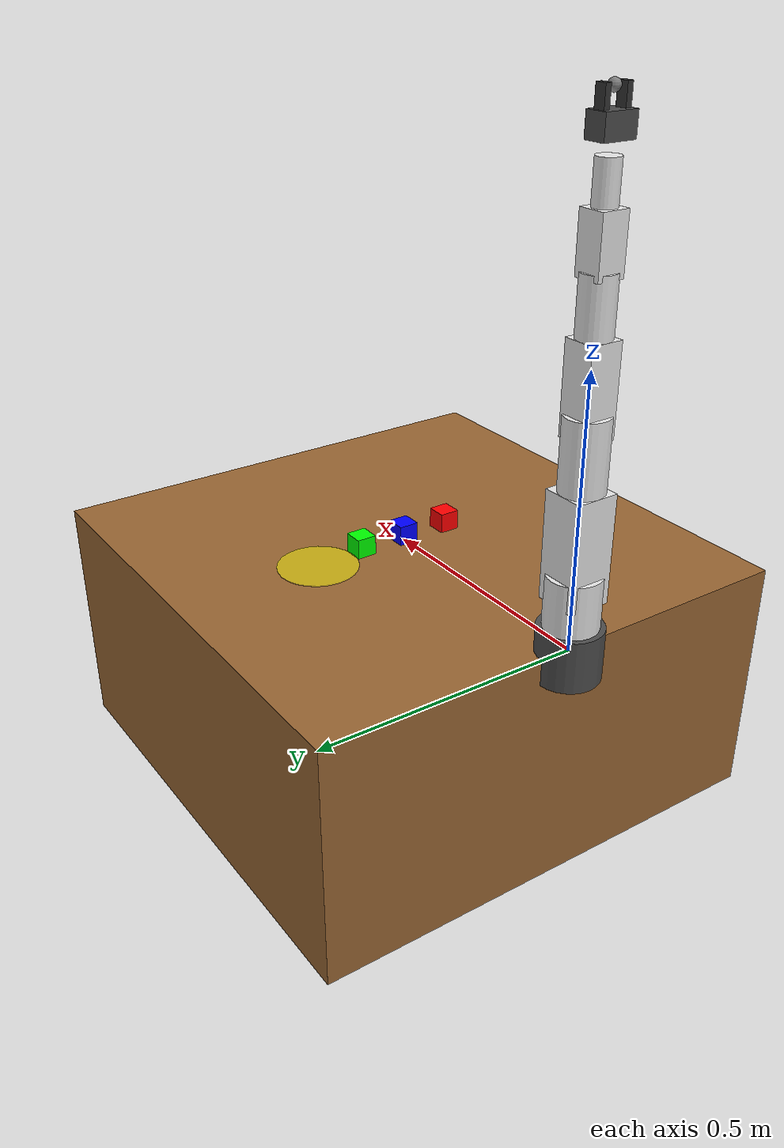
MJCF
<mujoco model="franka_pick_place">
    <compiler angle="radian" meshdir="assets"/>

    <option timestep="0.002" gravity="0 0 -9.81"/>

    <asset>
        <!-- Materials for colored blocks -->
        <material name="red" rgba="1 0 0 1"/>
        <material name="blue" rgba="0 0 1 1"/>
        <material name="green" rgba="0 1 0 1"/>
        <material name="yellow" rgba="1 1 0 0.5"/>
        <material name="wood" rgba="0.6 0.4 0.2 1"/>
        <material name="metal" rgba="0.7 0.7 0.7 1"/>
    </asset>

    <worldbody>
        <!-- Lighting -->
        <light directional="true" pos="0 0 3" dir="0 0 -1"/>
        <light directional="true" pos="0.5 0.5 2" dir="0 0 -1"/>

        <!-- Table -->
        <body name="table" pos="0.5 0 -0.25">
            <geom type="box" size="0.5 0.5 0.25" material="wood" mass="0"/>
        </body>

        <!-- Simple Franka-like Robot Arm (7-DOF + gripper) -->
        <body name="robot_base" pos="0 0 0">
            <!-- Link 0: Base -->
            <geom type="cylinder" size="0.06 0.05" rgba="0.3 0.3 0.3 1" mass="0"/>

            <!-- Joint 1: Rotation around Z -->
            <body name="link1" pos="0 0 0.05">
                <joint name="joint1" type="hinge" axis="0 0 1" range="-2.8973 2.8973" damping="0.5"/>
                <geom type="cylinder" size="0.05 0.1" rgba="0.9 0.9 0.9 1"/>

                <!-- Joint 2: Rotation around Y -->
                <body name="link2" pos="0 0 0.15">
                    <joint name="joint2" type="hinge" axis="0 1 0" range="-1.7628 1.7628" damping="0.5"/>
                    <geom type="box" size="0.04 0.04 0.1" rgba="0.9 0.9 0.9 1"/>

                    <!-- Joint 3: Rotation around Z -->
                    <body name="link3" pos="0 0 0.15">
                        <joint name="joint3" type="hinge" axis="0 0 1" range="-2.8973 2.8973" damping="0.5"/>
                        <geom type="cylinder" size="0.04 0.08" rgba="0.9 0.9 0.9 1"/>

                        <!-- Joint 4: Rotation around Y -->
                        <body name="link4" pos="0 0 0.12">
                            <joint name="joint4" type="hinge" axis="0 1 0" range="-3.0718 -0.0698" damping="0.5"/>
                            <geom type="box" size="0.03 0.03 0.08" rgba="0.9 0.9 0.9 1"/>

                            <!-- Joint 5: Rotation around Z -->
                            <body name="link5" pos="0 0 0.12">
                                <joint name="joint5" type="hinge" axis="0 0 1" range="-2.8973 2.8973" damping="0.5"/>
                                <geom type="cylinder" size="0.03 0.06" rgba="0.9 0.9 0.9 1"/>

                                <!-- Joint 6: Rotation around Y -->
                                <body name="link6" pos="0 0 0.1">
                                    <joint name="joint6" type="hinge" axis="0 1 0" range="-0.0175 3.7525" damping="0.5"/>
                                    <geom type="box" size="0.025 0.025 0.05" rgba="0.9 0.9 0.9 1"/>

                                    <!-- Joint 7: Rotation around Z -->
                                    <body name="link7" pos="0 0 0.08">
                                        <joint name="joint7" type="hinge" axis="0 0 1" range="-2.8973 2.8973" damping="0.5"/>
                                        <geom type="cylinder" size="0.02 0.04" rgba="0.9 0.9 0.9 1"/>

                                        <!-- End Effector / Gripper Base -->
                                        <body name="gripper_base" pos="0 0 0.08">
                                            <geom type="box" size="0.02 0.03 0.02" rgba="0.3 0.3 0.3 1"/>

                                            <!-- Camera (for observation) -->
                                            <camera name="overhead_cam" pos="0 0 0.6" quat="1 0 0 0" fovy="60"/>

                                            <!-- Left Gripper Finger -->
                                            <body name="left_finger" pos="0 0.02 0.03">
                                                <joint name="left_finger_joint" type="slide" axis="0 1 0" range="0 0.04" damping="0.1"/>
                                                <geom name="left_finger_geom" type="box" size="0.01 0.005 0.025" rgba="0.2 0.2 0.2 1"/>
                                            </body>

                                            <!-- Right Gripper Finger -->
                                            <body name="right_finger" pos="0 -0.02 0.03">
                                                <joint name="right_finger_joint" type="slide" axis="0 -1 0" range="0 0.04" damping="0.1"/>
                                                <geom name="right_finger_geom" type="box" size="0.01 0.005 0.025" rgba="0.2 0.2 0.2 1"/>
                                            </body>

                                            <!-- End effector site (for IK target) -->
                                            <site name="ee_site" pos="0 0 0.05" size="0.01"/>
                                        </body>
                                    </body>
                                </body>
                            </body>
                        </body>
                    </body>
                </body>
            </body>
        </body>

        <!-- Red Block -->
        <body name="red_block" pos="0.5 -0.1 0.02">
            <joint type="free"/>
            <geom name="red_geom" type="box" size="0.02 0.02 0.02" material="red" mass="0.05"/>
        </body>

        <!-- Blue Block -->
        <body name="blue_block" pos="0.5 0.0 0.02">
            <joint type="free"/>
            <geom name="blue_geom" type="box" size="0.02 0.02 0.02" material="blue" mass="0.05"/>
        </body>

        <!-- Green Block -->
        <body name="green_block" pos="0.5 0.1 0.02">
            <joint type="free"/>
            <geom name="green_geom" type="box" size="0.02 0.02 0.02" material="green" mass="0.05"/>
        </body>

        <!-- Target zone (visual only) -->
        <body name="target" pos="0.5 0.2 0.001">
            <geom type="cylinder" size="0.08 0.001" material="yellow" mass="0" contype="0" conaffinity="0"/>
        </body>
    </worldbody>

    <actuator>
        <!-- Joint actuators (position control) -->
        <position name="joint1_actuator" joint="joint1" kp="100" ctrlrange="-2.8973 2.8973"/>
        <position name="joint2_actuator" joint="joint2" kp="100" ctrlrange="-1.7628 1.7628"/>
        <position name="joint3_actuator" joint="joint3" kp="100" ctrlrange="-2.8973 2.8973"/>
        <position name="joint4_actuator" joint="joint4" kp="100" ctrlrange="-3.0718 -0.0698"/>
        <position name="joint5_actuator" joint="joint5" kp="100" ctrlrange="-2.8973 2.8973"/>
        <position name="joint6_actuator" joint="joint6" kp="100" ctrlrange="-0.0175 3.7525"/>
        <position name="joint7_actuator" joint="joint7" kp="100" ctrlrange="-2.8973 2.8973"/>

        <!-- Gripper actuators -->
        <position name="left_finger_actuator" joint="left_finger_joint" kp="20" ctrlrange="0 0.04"/>
        <position name="right_finger_actuator" joint="right_finger_joint" kp="20" ctrlrange="0 0.04"/>
    </actuator>
</mujoco>
